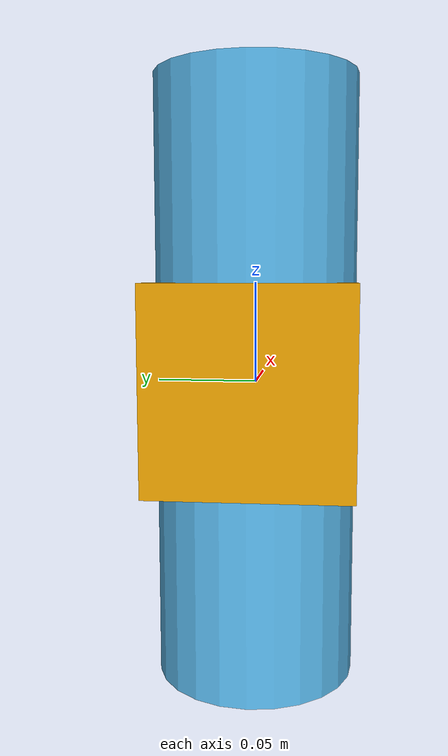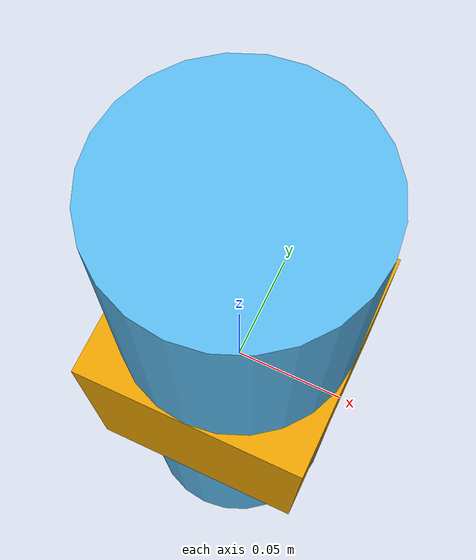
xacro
<?xml version="1.0"?>
<!--
  Minimal URDF for a 2‑joint robot connected over EtherNet/IP.
  This uses the xacro macro from ethernetip_system.xacro.
-->
<robot xmlns:xacro="http://www.ros.org/wiki/xacro" name="example_eip_robot">

  <xacro:include filename="$(find ethernetip_description)/urdf/ethernetip_system.xacro"/>

  <!-- Base link -->
  <link name="base_link">
    <visual>
      <geometry><box size="0.1 0.1 0.1"/></geometry>
    </visual>
  </link>

  <!-- Joint 1 -->
  <joint name="joint1" type="revolute">
    <parent link="base_link"/>
    <child link="link1"/>
    <axis xyz="0 0 1"/>
    <limit lower="-3.14" upper="3.14" velocity="1.0" effort="100"/>
  </joint>
  <link name="link1">
    <visual>
      <geometry><cylinder radius="0.05" length="0.3"/></geometry>
    </visual>
  </link>

  <!-- Joint 2 -->
  <joint name="joint2" type="revolute">
    <parent link="link1"/>
    <child link="link2"/>
    <axis xyz="0 1 0"/>
    <limit lower="-3.14" upper="3.14" velocity="1.0" effort="100"/>
  </joint>
  <link name="link2">
    <visual>
      <geometry><cylinder radius="0.05" length="0.3"/></geometry>
    </visual>
  </link>

  <!-- EtherNet/IP hardware interface -->
  <xacro:ethernetip_system
    name="eip_system"
    config_file="$(find ethernetip_description)/config/example_devices.yaml"
  />

  <!-- Map joints to ros2_control interfaces (added separately) -->
  <!-- Joint interfaces are defined by the device YAML via the generic IO driver -->

</robot>
